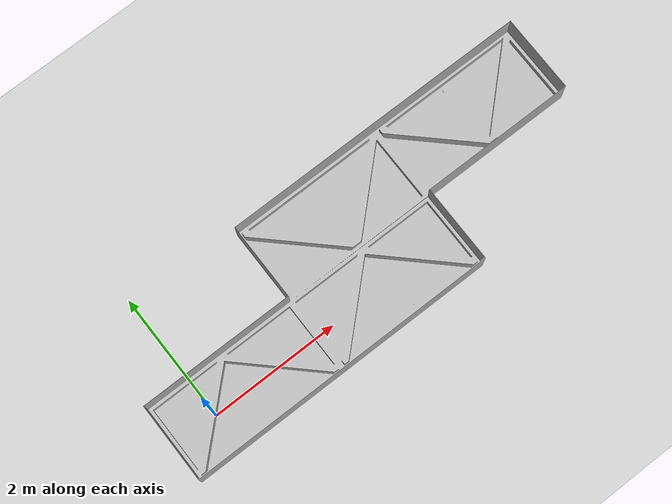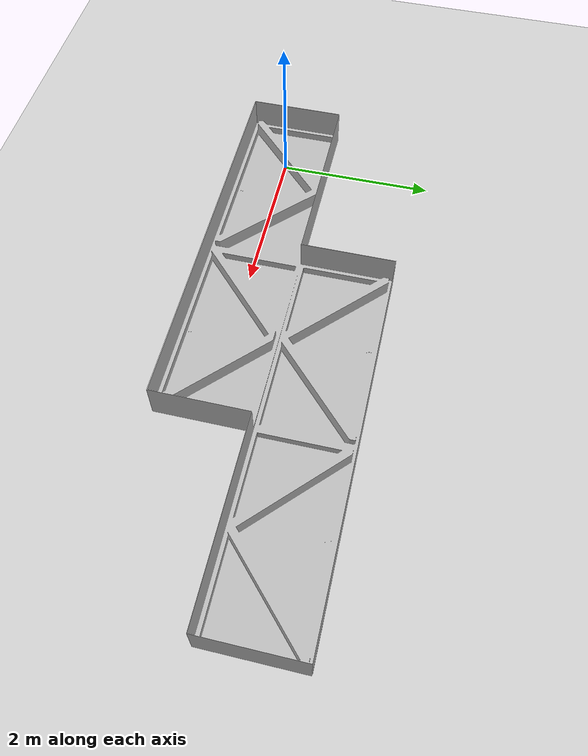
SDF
<sdf version="1.7">
 <world name="sample">
  <model name="ground_plane">
   <static>1</static>
   <link name="link">
    <collision name="collision">
     <geometry><plane><normal>0 0 1</normal><size>100 100</size></plane></geometry>
     <surface>
      <contact><collide_bitmask>65535</collide_bitmask></contact>
      <friction><ode><mu>100</mu><mu2>50</mu2></ode></friction>
     </surface>
    </collision>
    <visual name="visual">
     <cast_shadows>0</cast_shadows>
     <geometry><plane><normal>0 0 1</normal><size>100 100</size></plane></geometry>
     <material>
      <script><uri>file://media/materials/scripts/gazebo.material</uri><name>Gazebo/Grey</name></script>
     </material>
    </visual>
   </link>
  </model>
  <model name="krail_plane_20cm">
   <static>1</static>
   <pose>-0.690914 -0.608268 0 1.5708 4e-06 -1.57296</pose>
   <link name="link">
    <collision name="collision">
     <geometry>
      <mesh><scale>0.01 0.01 0.01</scale><uri>model://krail_plane_20cm/KRail_plane_20cm.dae</uri></mesh>
     </geometry>
     <surface><friction><ode><mu>100</mu><mu2>50</mu2></ode></friction></surface>
    </collision>
    <visual name="visual">
     <geometry>
      <mesh><scale>0.01 0.01 0.01</scale><uri>model://krail_plane_20cm/KRail_plane_20cm.dae</uri></mesh>
     </geometry>
    </visual>
   </link>
  </model>
 </world>
</sdf>
